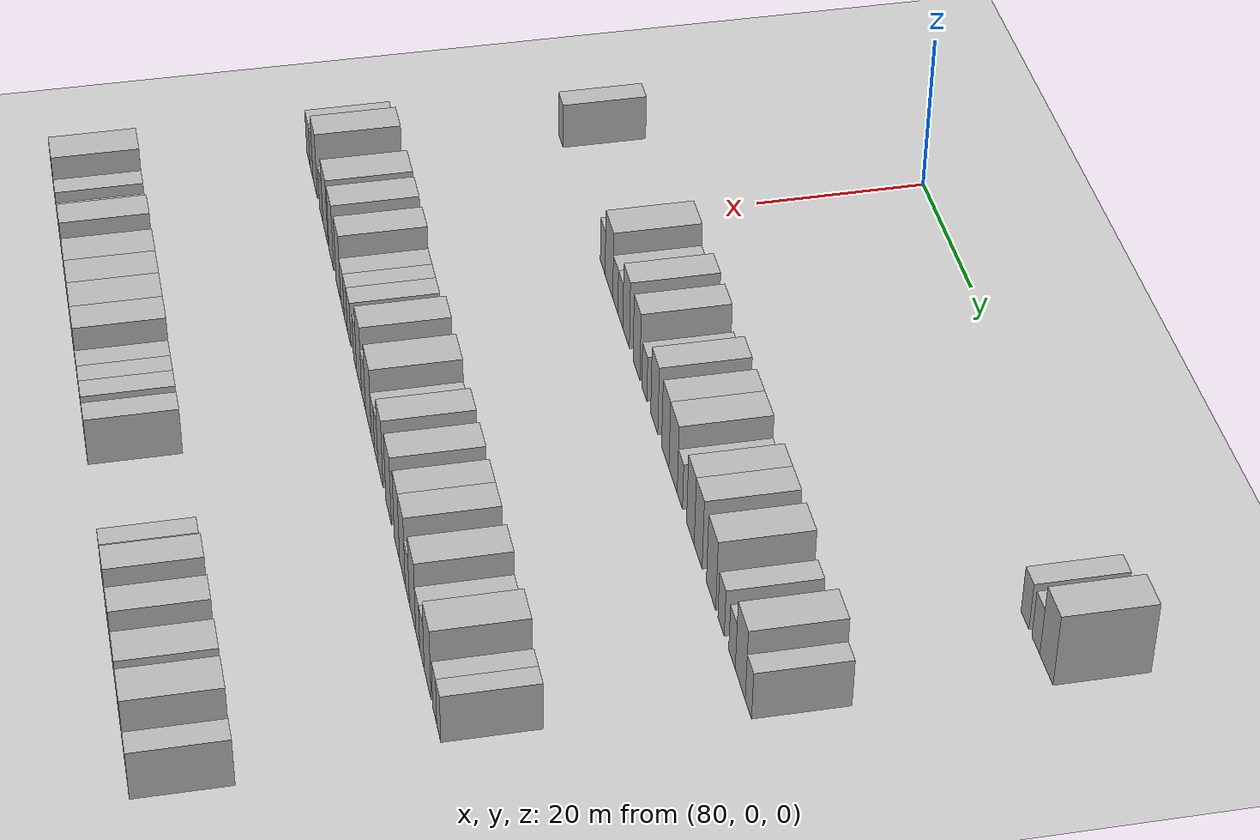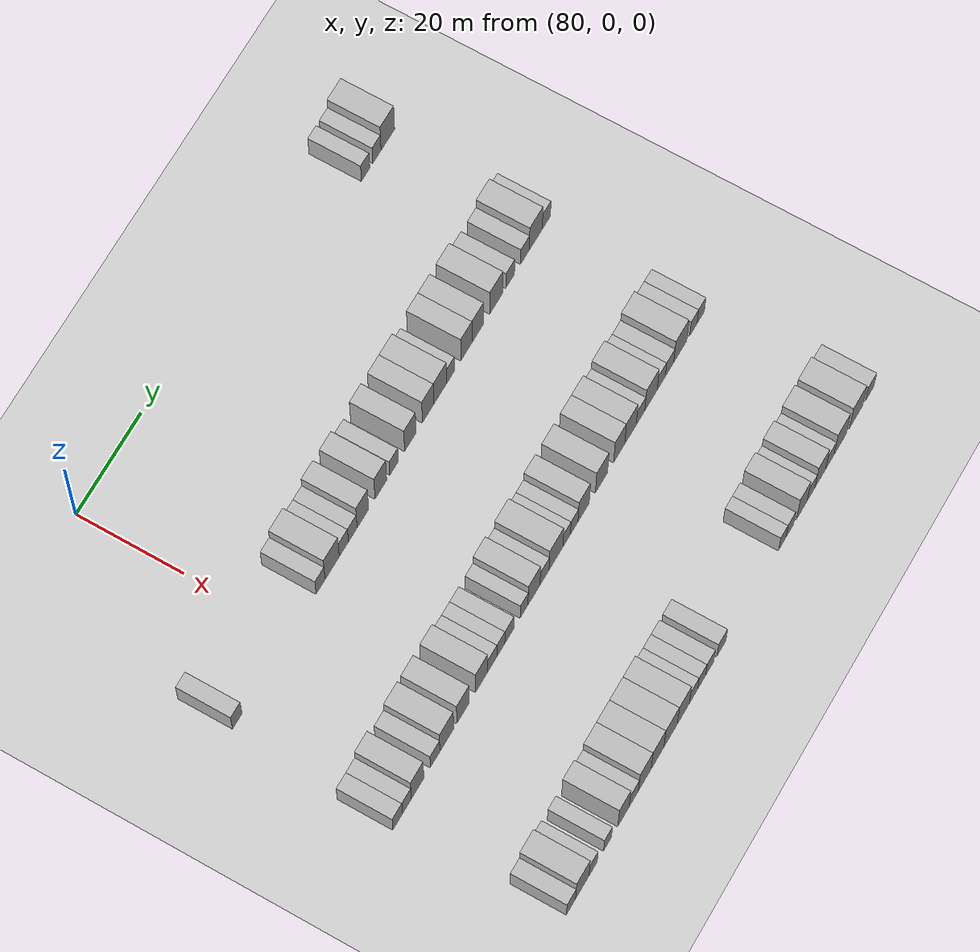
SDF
<sdf version="1.6">
 <world name="default">
  <include>
   <name>ground_plane_2</name>
   <uri>model://HANNAS_ground_plane</uri>
   <pose>100 0 0  0 0 0</pose>
  </include>
  <model name="building_604">
   <static>1</static>
   <pose>85.0000 74.1453 0 0.000000 0.000000 0.000000</pose>
   <link name="link">
    <pose>0 0 3.00 0 0 0</pose>
    <collision name="collision"><geometry><box><size>10.0000 2.7039 6.0000</size></box></geometry></collision>
    <visual name="visual">
     <cast_shadows>0</cast_shadows>
     <geometry><box><size>10.0000 2.7039 6.0000</size></box></geometry>
     <material>
      <script>
       <uri>model://HANNAS_wall/materials/scripts</uri>
       <uri>model://HANNAS_wall/materials/textures</uri>
       <name>vrc/HANNAS_wall</name>
      </script>
     </material>
    </visual>
   </link>
  </model>
  <model name="building_605">
   <static>1</static>
   <pose>85.0000 77.8396 0 0.000000 0.000000 0.000000</pose>
   <link name="link">
    <pose>0 0 3.00 0 0 0</pose>
    <collision name="collision"><geometry><box><size>10.0000 2.6846 6.0000</size></box></geometry></collision>
    <visual name="visual">
     <cast_shadows>0</cast_shadows>
     <geometry><box><size>10.0000 2.6846 6.0000</size></box></geometry>
     <material>
      <script>
       <uri>model://HANNAS_wall/materials/scripts</uri>
       <uri>model://HANNAS_wall/materials/textures</uri>
       <name>vrc/HANNAS_wall</name>
      </script>
     </material>
    </visual>
   </link>
  </model>
  <model name="building_606">
   <static>1</static>
   <pose>85.0000 81.4004 0 0.000000 0.000000 0.000000</pose>
   <link name="link">
    <pose>0 0 4.50 0 0 0</pose>
    <collision name="collision"><geometry><box><size>10.0000 4.4370 9.0000</size></box></geometry></collision>
    <visual name="visual">
     <cast_shadows>0</cast_shadows>
     <geometry><box><size>10.0000 4.4370 9.0000</size></box></geometry>
     <material>
      <script>
       <uri>model://HANNAS_wall/materials/scripts</uri>
       <uri>model://HANNAS_wall/materials/textures</uri>
       <name>vrc/HANNAS_wall</name>
      </script>
     </material>
    </visual>
   </link>
  </model>
  <model name="building_806">
   <static>1</static>
   <pose>115.0000 -16.8398 0 0.000000 0.000000 0.000000</pose>
   <link name="link">
    <pose>0 0 3.00 0 0 0</pose>
    <collision name="collision"><geometry><box><size>10.0000 2.8907 6.0000</size></box></geometry></collision>
    <visual name="visual">
     <cast_shadows>0</cast_shadows>
     <geometry><box><size>10.0000 2.8907 6.0000</size></box></geometry>
     <material>
      <script>
       <uri>model://HANNAS_wall/materials/scripts</uri>
       <uri>model://HANNAS_wall/materials/textures</uri>
       <name>vrc/HANNAS_wall</name>
      </script>
     </material>
    </visual>
   </link>
  </model>
  <model name="building_807">
   <static>1</static>
   <pose>115.0000 8.8310 0 0.000000 0.000000 0.000000</pose>
   <link name="link">
    <pose>0 0 3.00 0 0 0</pose>
    <collision name="collision"><geometry><box><size>10.0000 2.8169 6.0000</size></box></geometry></collision>
    <visual name="visual">
     <cast_shadows>0</cast_shadows>
     <geometry><box><size>10.0000 2.8169 6.0000</size></box></geometry>
     <material>
      <script>
       <uri>model://HANNAS_wall/materials/scripts</uri>
       <uri>model://HANNAS_wall/materials/textures</uri>
       <name>vrc/HANNAS_wall</name>
      </script>
     </material>
    </visual>
   </link>
  </model>
  <model name="building_808">
   <static>1</static>
   <pose>115.0000 12.4480 0 0.000000 0.000000 0.000000</pose>
   <link name="link">
    <pose>0 0 4.50 0 0 0</pose>
    <collision name="collision"><geometry><box><size>10.0000 4.4171 9.0000</size></box></geometry></collision>
    <visual name="visual">
     <cast_shadows>0</cast_shadows>
     <geometry><box><size>10.0000 4.4171 9.0000</size></box></geometry>
     <material>
      <script>
       <uri>model://HANNAS_wall/materials/scripts</uri>
       <uri>model://HANNAS_wall/materials/textures</uri>
       <name>vrc/HANNAS_wall</name>
      </script>
     </material>
    </visual>
   </link>
  </model>
  <model name="building_809">
   <static>1</static>
   <pose>115.0000 16.0940 0 0.000000 0.000000 0.000000</pose>
   <link name="link">
    <pose>0 0 3.00 0 0 0</pose>
    <collision name="collision"><geometry><box><size>10.0000 2.8749 6.0000</size></box></geometry></collision>
    <visual name="visual">
     <cast_shadows>0</cast_shadows>
     <geometry><box><size>10.0000 2.8749 6.0000</size></box></geometry>
     <material>
      <script>
       <uri>model://HANNAS_wall/materials/scripts</uri>
       <uri>model://HANNAS_wall/materials/textures</uri>
       <name>vrc/HANNAS_wall</name>
      </script>
     </material>
    </visual>
   </link>
  </model>
  <model name="building_810">
   <static>1</static>
   <pose>115.0000 18.9002 0 0.000000 0.000000 0.000000</pose>
   <link name="link">
    <pose>0 0 3.00 0 0 0</pose>
    <collision name="collision"><geometry><box><size>10.0000 2.7374 6.0000</size></box></geometry></collision>
    <visual name="visual">
     <cast_shadows>0</cast_shadows>
     <geometry><box><size>10.0000 2.7374 6.0000</size></box></geometry>
     <material>
      <script>
       <uri>model://HANNAS_wall/materials/scripts</uri>
       <uri>model://HANNAS_wall/materials/textures</uri>
       <name>vrc/HANNAS_wall</name>
      </script>
     </material>
    </visual>
   </link>
  </model>
  <model name="building_811">
   <static>1</static>
   <pose>115.0000 22.0830 0 0.000000 0.000000 0.000000</pose>
   <link name="link">
    <pose>0 0 4.50 0 0 0</pose>
    <collision name="collision"><geometry><box><size>10.0000 3.6283 9.0000</size></box></geometry></collision>
    <visual name="visual">
     <cast_shadows>0</cast_shadows>
     <geometry><box><size>10.0000 3.6283 9.0000</size></box></geometry>
     <material>
      <script>
       <uri>model://HANNAS_wall/materials/scripts</uri>
       <uri>model://HANNAS_wall/materials/textures</uri>
       <name>vrc/HANNAS_wall</name>
      </script>
     </material>
    </visual>
   </link>
  </model>
  <model name="building_812">
   <static>1</static>
   <pose>115.0000 27.7360 0 0.000000 0.000000 0.000000</pose>
   <link name="link">
    <pose>0 0 4.50 0 0 0</pose>
    <collision name="collision"><geometry><box><size>10.0000 3.6775 9.0000</size></box></geometry></collision>
    <visual name="visual">
     <cast_shadows>0</cast_shadows>
     <geometry><box><size>10.0000 3.6775 9.0000</size></box></geometry>
     <material>
      <script>
       <uri>model://HANNAS_wall/materials/scripts</uri>
       <uri>model://HANNAS_wall/materials/textures</uri>
       <name>vrc/HANNAS_wall</name>
      </script>
     </material>
    </visual>
   </link>
  </model>
  <model name="building_813">
   <static>1</static>
   <pose>115.0000 31.9320 0 0.000000 0.000000 0.000000</pose>
   <link name="link">
    <pose>0 0 3.00 0 0 0</pose>
    <collision name="collision"><geometry><box><size>10.0000 2.7144 6.0000</size></box></geometry></collision>
    <visual name="visual">
     <cast_shadows>0</cast_shadows>
     <geometry><box><size>10.0000 2.7144 6.0000</size></box></geometry>
     <material>
      <script>
       <uri>model://HANNAS_wall/materials/scripts</uri>
       <uri>model://HANNAS_wall/materials/textures</uri>
       <name>vrc/HANNAS_wall</name>
      </script>
     </material>
    </visual>
   </link>
  </model>
  <model name="building_814">
   <static>1</static>
   <pose>115.0000 37.1211 0 0.000000 0.000000 0.000000</pose>
   <link name="link">
    <pose>0 0 4.50 0 0 0</pose>
    <collision name="collision"><geometry><box><size>10.0000 3.6639 9.0000</size></box></geometry></collision>
    <visual name="visual">
     <cast_shadows>0</cast_shadows>
     <geometry><box><size>10.0000 3.6639 9.0000</size></box></geometry>
     <material>
      <script>
       <uri>model://HANNAS_wall/materials/scripts</uri>
       <uri>model://HANNAS_wall/materials/textures</uri>
       <name>vrc/HANNAS_wall</name>
      </script>
     </material>
    </visual>
   </link>
  </model>
  <model name="building_815">
   <static>1</static>
   <pose>115.0000 42.7922 0 0.000000 0.000000 0.000000</pose>
   <link name="link">
    <pose>0 0 4.50 0 0 0</pose>
    <collision name="collision"><geometry><box><size>10.0000 3.6782 9.0000</size></box></geometry></collision>
    <visual name="visual">
     <cast_shadows>0</cast_shadows>
     <geometry><box><size>10.0000 3.6782 9.0000</size></box></geometry>
     <material>
      <script>
       <uri>model://HANNAS_wall/materials/scripts</uri>
       <uri>model://HANNAS_wall/materials/textures</uri>
       <name>vrc/HANNAS_wall</name>
      </script>
     </material>
    </visual>
   </link>
  </model>
  <model name="building_816">
   <static>1</static>
   <pose>115.0000 46.7057 0 0.000000 0.000000 0.000000</pose>
   <link name="link">
    <pose>0 0 4.50 0 0 0</pose>
    <collision name="collision"><geometry><box><size>10.0000 4.1488 9.0000</size></box></geometry></collision>
    <visual name="visual">
     <cast_shadows>0</cast_shadows>
     <geometry><box><size>10.0000 4.1488 9.0000</size></box></geometry>
     <material>
      <script>
       <uri>model://HANNAS_wall/materials/scripts</uri>
       <uri>model://HANNAS_wall/materials/textures</uri>
       <name>vrc/HANNAS_wall</name>
      </script>
     </material>
    </visual>
   </link>
  </model>
  <model name="building_817">
   <static>1</static>
   <pose>115.0000 50.0648 0 0.000000 0.000000 0.000000</pose>
   <link name="link">
    <pose>0 0 3.00 0 0 0</pose>
    <collision name="collision"><geometry><box><size>10.0000 2.5695 6.0000</size></box></geometry></collision>
    <visual name="visual">
     <cast_shadows>0</cast_shadows>
     <geometry><box><size>10.0000 2.5695 6.0000</size></box></geometry>
     <material>
      <script>
       <uri>model://HANNAS_wall/materials/scripts</uri>
       <uri>model://HANNAS_wall/materials/textures</uri>
       <name>vrc/HANNAS_wall</name>
      </script>
     </material>
    </visual>
   </link>
  </model>
  <model name="building_818">
   <static>1</static>
   <pose>115.0000 55.1707 0 0.000000 0.000000 0.000000</pose>
   <link name="link">
    <pose>0 0 4.50 0 0 0</pose>
    <collision name="collision"><geometry><box><size>10.0000 3.6423 9.0000</size></box></geometry></collision>
    <visual name="visual">
     <cast_shadows>0</cast_shadows>
     <geometry><box><size>10.0000 3.6423 9.0000</size></box></geometry>
     <material>
      <script>
       <uri>model://HANNAS_wall/materials/scripts</uri>
       <uri>model://HANNAS_wall/materials/textures</uri>
       <name>vrc/HANNAS_wall</name>
      </script>
     </material>
    </visual>
   </link>
  </model>
  <model name="building_819">
   <static>1</static>
   <pose>115.0000 58.8680 0 0.000000 0.000000 0.000000</pose>
   <link name="link">
    <pose>0 0 4.50 0 0 0</pose>
    <collision name="collision"><geometry><box><size>10.0000 3.7523 9.0000</size></box></geometry></collision>
    <visual name="visual">
     <cast_shadows>0</cast_shadows>
     <geometry><box><size>10.0000 3.7523 9.0000</size></box></geometry>
     <material>
      <script>
       <uri>model://HANNAS_wall/materials/scripts</uri>
       <uri>model://HANNAS_wall/materials/textures</uri>
       <name>vrc/HANNAS_wall</name>
      </script>
     </material>
    </visual>
   </link>
  </model>
  <model name="building_820">
   <static>1</static>
   <pose>115.0000 64.8810 0 0.000000 0.000000 0.000000</pose>
   <link name="link">
    <pose>0 0 4.50 0 0 0</pose>
    <collision name="collision"><geometry><box><size>10.0000 4.2737 9.0000</size></box></geometry></collision>
    <visual name="visual">
     <cast_shadows>0</cast_shadows>
     <geometry><box><size>10.0000 4.2737 9.0000</size></box></geometry>
     <material>
      <script>
       <uri>model://HANNAS_wall/materials/scripts</uri>
       <uri>model://HANNAS_wall/materials/textures</uri>
       <name>vrc/HANNAS_wall</name>
      </script>
     </material>
    </visual>
   </link>
  </model>
  <model name="building_821">
   <static>1</static>
   <pose>115.0000 69.4474 0 0.000000 0.000000 0.000000</pose>
   <link name="link">
    <pose>0 0 3.00 0 0 0</pose>
    <collision name="collision"><geometry><box><size>10.0000 2.8591 6.0000</size></box></geometry></collision>
    <visual name="visual">
     <cast_shadows>0</cast_shadows>
     <geometry><box><size>10.0000 2.8591 6.0000</size></box></geometry>
     <material>
      <script>
       <uri>model://HANNAS_wall/materials/scripts</uri>
       <uri>model://HANNAS_wall/materials/textures</uri>
       <name>vrc/HANNAS_wall</name>
      </script>
     </material>
    </visual>
   </link>
  </model>
  <model name="building_822">
   <static>1</static>
   <pose>115.0000 74.3175 0 0.000000 0.000000 0.000000</pose>
   <link name="link">
    <pose>0 0 3.00 0 0 0</pose>
    <collision name="collision"><geometry><box><size>10.0000 2.8810 6.0000</size></box></geometry></collision>
    <visual name="visual">
     <cast_shadows>0</cast_shadows>
     <geometry><box><size>10.0000 2.8810 6.0000</size></box></geometry>
     <material>
      <script>
       <uri>model://HANNAS_wall/materials/scripts</uri>
       <uri>model://HANNAS_wall/materials/textures</uri>
       <name>vrc/HANNAS_wall</name>
      </script>
     </material>
    </visual>
   </link>
  </model>
  <model name="building_823">
   <static>1</static>
   <pose>115.0000 77.9196 0 0.000000 0.000000 0.000000</pose>
   <link name="link">
    <pose>0 0 4.50 0 0 0</pose>
    <collision name="collision"><geometry><box><size>10.0000 4.3233 9.0000</size></box></geometry></collision>
    <visual name="visual">
     <cast_shadows>0</cast_shadows>
     <geometry><box><size>10.0000 4.3233 9.0000</size></box></geometry>
     <material>
      <script>
       <uri>model://HANNAS_wall/materials/scripts</uri>
       <uri>model://HANNAS_wall/materials/textures</uri>
       <name>vrc/HANNAS_wall</name>
      </script>
     </material>
    </visual>
   </link>
  </model>
  <model name="building_824">
   <static>1</static>
   <pose>115.0000 81.4338 0 0.000000 0.000000 0.000000</pose>
   <link name="link">
    <pose>0 0 3.00 0 0 0</pose>
    <collision name="collision"><geometry><box><size>10.0000 2.7050 6.0000</size></box></geometry></collision>
    <visual name="visual">
     <cast_shadows>0</cast_shadows>
     <geometry><box><size>10.0000 2.7050 6.0000</size></box></geometry>
     <material>
      <script>
       <uri>model://HANNAS_wall/materials/scripts</uri>
       <uri>model://HANNAS_wall/materials/textures</uri>
       <name>vrc/HANNAS_wall</name>
      </script>
     </material>
    </visual>
   </link>
  </model>
  <model name="building_1018">
   <static>1</static>
   <pose>145.0000 -18.4782 0 0.000000 0.000000 0.000000</pose>
   <link name="link">
    <pose>0 0 3.00 0 0 0</pose>
    <collision name="collision"><geometry><box><size>10.0000 2.9635 6.0000</size></box></geometry></collision>
    <visual name="visual">
     <cast_shadows>0</cast_shadows>
     <geometry><box><size>10.0000 2.9635 6.0000</size></box></geometry>
     <material>
      <script>
       <uri>model://HANNAS_wall/materials/scripts</uri>
       <uri>model://HANNAS_wall/materials/textures</uri>
       <name>vrc/HANNAS_wall</name>
      </script>
     </material>
    </visual>
   </link>
  </model>
  <model name="building_1019">
   <static>1</static>
   <pose>145.0000 -15.6277 0 0.000000 0.000000 0.000000</pose>
   <link name="link">
    <pose>0 0 3.00 0 0 0</pose>
    <collision name="collision"><geometry><box><size>10.0000 2.7375 6.0000</size></box></geometry></collision>
    <visual name="visual">
     <cast_shadows>0</cast_shadows>
     <geometry><box><size>10.0000 2.7375 6.0000</size></box></geometry>
     <material>
      <script>
       <uri>model://HANNAS_wall/materials/scripts</uri>
       <uri>model://HANNAS_wall/materials/textures</uri>
       <name>vrc/HANNAS_wall</name>
      </script>
     </material>
    </visual>
   </link>
  </model>
  <model name="building_1020">
   <static>1</static>
   <pose>145.0000 -12.3094 0 0.000000 0.000000 0.000000</pose>
   <link name="link">
    <pose>0 0 4.50 0 0 0</pose>
    <collision name="collision"><geometry><box><size>10.0000 3.8991 9.0000</size></box></geometry></collision>
    <visual name="visual">
     <cast_shadows>0</cast_shadows>
     <geometry><box><size>10.0000 3.8991 9.0000</size></box></geometry>
     <material>
      <script>
       <uri>model://HANNAS_wall/materials/scripts</uri>
       <uri>model://HANNAS_wall/materials/textures</uri>
       <name>vrc/HANNAS_wall</name>
      </script>
     </material>
    </visual>
   </link>
  </model>
  <model name="building_1021">
   <static>1</static>
   <pose>145.0000 -6.8684 0 0.000000 0.000000 0.000000</pose>
   <link name="link">
    <pose>0 0 3.00 0 0 0</pose>
    <collision name="collision"><geometry><box><size>10.0000 2.9828 6.0000</size></box></geometry></collision>
    <visual name="visual">
     <cast_shadows>0</cast_shadows>
     <geometry><box><size>10.0000 2.9828 6.0000</size></box></geometry>
     <material>
      <script>
       <uri>model://HANNAS_wall/materials/scripts</uri>
       <uri>model://HANNAS_wall/materials/textures</uri>
       <name>vrc/HANNAS_wall</name>
      </script>
     </material>
    </visual>
   </link>
  </model>
  <model name="building_1022">
   <static>1</static>
   <pose>145.0000 -3.2334 0 0.000000 0.000000 0.000000</pose>
   <link name="link">
    <pose>0 0 4.50 0 0 0</pose>
    <collision name="collision"><geometry><box><size>10.0000 4.2872 9.0000</size></box></geometry></collision>
    <visual name="visual">
     <cast_shadows>0</cast_shadows>
     <geometry><box><size>10.0000 4.2872 9.0000</size></box></geometry>
     <material>
      <script>
       <uri>model://HANNAS_wall/materials/scripts</uri>
       <uri>model://HANNAS_wall/materials/textures</uri>
       <name>vrc/HANNAS_wall</name>
      </script>
     </material>
    </visual>
   </link>
  </model>
  <model name="building_1023">
   <static>1</static>
   <pose>145.0000 1.8615 0 0.000000 0.000000 0.000000</pose>
   <link name="link">
    <pose>0 0 4.50 0 0 0</pose>
    <collision name="collision"><geometry><box><size>10.0000 3.9025 9.0000</size></box></geometry></collision>
    <visual name="visual">
     <cast_shadows>0</cast_shadows>
     <geometry><box><size>10.0000 3.9025 9.0000</size></box></geometry>
     <material>
      <script>
       <uri>model://HANNAS_wall/materials/scripts</uri>
       <uri>model://HANNAS_wall/materials/textures</uri>
       <name>vrc/HANNAS_wall</name>
      </script>
     </material>
    </visual>
   </link>
  </model>
  <model name="building_1024">
   <static>1</static>
   <pose>145.0000 7.7265 0 0.000000 0.000000 0.000000</pose>
   <link name="link">
    <pose>0 0 4.50 0 0 0</pose>
    <collision name="collision"><geometry><box><size>10.0000 3.8275 9.0000</size></box></geometry></collision>
    <visual name="visual">
     <cast_shadows>0</cast_shadows>
     <geometry><box><size>10.0000 3.8275 9.0000</size></box></geometry>
     <material>
      <script>
       <uri>model://HANNAS_wall/materials/scripts</uri>
       <uri>model://HANNAS_wall/materials/textures</uri>
       <name>vrc/HANNAS_wall</name>
      </script>
     </material>
    </visual>
   </link>
  </model>
  <model name="building_1025">
   <static>1</static>
   <pose>145.0000 11.1079 0 0.000000 0.000000 0.000000</pose>
   <link name="link">
    <pose>0 0 3.00 0 0 0</pose>
    <collision name="collision"><geometry><box><size>10.0000 2.9354 6.0000</size></box></geometry></collision>
    <visual name="visual">
     <cast_shadows>0</cast_shadows>
     <geometry><box><size>10.0000 2.9354 6.0000</size></box></geometry>
     <material>
      <script>
       <uri>model://HANNAS_wall/materials/scripts</uri>
       <uri>model://HANNAS_wall/materials/textures</uri>
       <name>vrc/HANNAS_wall</name>
      </script>
     </material>
    </visual>
   </link>
  </model>
  <model name="building_1026">
   <static>1</static>
   <pose>145.0000 13.8409 0 0.000000 0.000000 0.000000</pose>
   <link name="link">
    <pose>0 0 3.00 0 0 0</pose>
    <collision name="collision"><geometry><box><size>10.0000 2.5305 6.0000</size></box></geometry></collision>
    <visual name="visual">
     <cast_shadows>0</cast_shadows>
     <geometry><box><size>10.0000 2.5305 6.0000</size></box></geometry>
     <material>
      <script>
       <uri>model://HANNAS_wall/materials/scripts</uri>
       <uri>model://HANNAS_wall/materials/textures</uri>
       <name>vrc/HANNAS_wall</name>
      </script>
     </material>
    </visual>
   </link>
  </model>
  <model name="building_1027">
   <static>1</static>
   <pose>145.0000 16.5468 0 0.000000 0.000000 0.000000</pose>
   <link name="link">
    <pose>0 0 3.00 0 0 0</pose>
    <collision name="collision"><geometry><box><size>10.0000 2.8813 6.0000</size></box></geometry></collision>
    <visual name="visual">
     <cast_shadows>0</cast_shadows>
     <geometry><box><size>10.0000 2.8813 6.0000</size></box></geometry>
     <material>
      <script>
       <uri>model://HANNAS_wall/materials/scripts</uri>
       <uri>model://HANNAS_wall/materials/textures</uri>
       <name>vrc/HANNAS_wall</name>
      </script>
     </material>
    </visual>
   </link>
  </model>
  <model name="building_1028">
   <static>1</static>
   <pose>145.0000 21.2344 0 0.000000 0.000000 0.000000</pose>
   <link name="link">
    <pose>0 0 3.00 0 0 0</pose>
    <collision name="collision"><geometry><box><size>10.0000 2.4938 6.0000</size></box></geometry></collision>
    <visual name="visual">
     <cast_shadows>0</cast_shadows>
     <geometry><box><size>10.0000 2.4938 6.0000</size></box></geometry>
     <material>
      <script>
       <uri>model://HANNAS_wall/materials/scripts</uri>
       <uri>model://HANNAS_wall/materials/textures</uri>
       <name>vrc/HANNAS_wall</name>
      </script>
     </material>
    </visual>
   </link>
  </model>
  <model name="building_1029">
   <static>1</static>
   <pose>145.0000 24.4178 0 0.000000 0.000000 0.000000</pose>
   <link name="link">
    <pose>0 0 4.50 0 0 0</pose>
    <collision name="collision"><geometry><box><size>10.0000 3.8731 9.0000</size></box></geometry></collision>
    <visual name="visual">
     <cast_shadows>0</cast_shadows>
     <geometry><box><size>10.0000 3.8731 9.0000</size></box></geometry>
     <material>
      <script>
       <uri>model://HANNAS_wall/materials/scripts</uri>
       <uri>model://HANNAS_wall/materials/textures</uri>
       <name>vrc/HANNAS_wall</name>
      </script>
     </material>
    </visual>
   </link>
  </model>
  <model name="building_1030">
   <static>1</static>
   <pose>145.0000 27.8077 0 0.000000 0.000000 0.000000</pose>
   <link name="link">
    <pose>0 0 3.00 0 0 0</pose>
    <collision name="collision"><geometry><box><size>10.0000 2.9067 6.0000</size></box></geometry></collision>
    <visual name="visual">
     <cast_shadows>0</cast_shadows>
     <geometry><box><size>10.0000 2.9067 6.0000</size></box></geometry>
     <material>
      <script>
       <uri>model://HANNAS_wall/materials/scripts</uri>
       <uri>model://HANNAS_wall/materials/textures</uri>
       <name>vrc/HANNAS_wall</name>
      </script>
     </material>
    </visual>
   </link>
  </model>
  <model name="building_1031">
   <static>1</static>
   <pose>145.0000 31.4866 0 0.000000 0.000000 0.000000</pose>
   <link name="link">
    <pose>0 0 4.50 0 0 0</pose>
    <collision name="collision"><geometry><box><size>10.0000 4.4511 9.0000</size></box></geometry></collision>
    <visual name="visual">
     <cast_shadows>0</cast_shadows>
     <geometry><box><size>10.0000 4.4511 9.0000</size></box></geometry>
     <material>
      <script>
       <uri>model://HANNAS_wall/materials/scripts</uri>
       <uri>model://HANNAS_wall/materials/textures</uri>
       <name>vrc/HANNAS_wall</name>
      </script>
     </material>
    </visual>
   </link>
  </model>
  <model name="building_1032">
   <static>1</static>
   <pose>145.0000 34.9445 0 0.000000 0.000000 0.000000</pose>
   <link name="link">
    <pose>0 0 3.00 0 0 0</pose>
    <collision name="collision"><geometry><box><size>10.0000 2.4646 6.0000</size></box></geometry></collision>
    <visual name="visual">
     <cast_shadows>0</cast_shadows>
     <geometry><box><size>10.0000 2.4646 6.0000</size></box></geometry>
     <material>
      <script>
       <uri>model://HANNAS_wall/materials/scripts</uri>
       <uri>model://HANNAS_wall/materials/textures</uri>
       <name>vrc/HANNAS_wall</name>
      </script>
     </material>
    </visual>
   </link>
  </model>
  <model name="building_1033">
   <static>1</static>
   <pose>145.0000 37.3908 0 0.000000 0.000000 0.000000</pose>
   <link name="link">
    <pose>0 0 3.00 0 0 0</pose>
    <collision name="collision"><geometry><box><size>10.0000 2.4281 6.0000</size></box></geometry></collision>
    <visual name="visual">
     <cast_shadows>0</cast_shadows>
     <geometry><box><size>10.0000 2.4281 6.0000</size></box></geometry>
     <material>
      <script>
       <uri>model://HANNAS_wall/materials/scripts</uri>
       <uri>model://HANNAS_wall/materials/textures</uri>
       <name>vrc/HANNAS_wall</name>
      </script>
     </material>
    </visual>
   </link>
  </model>
  <model name="building_1034">
   <static>1</static>
   <pose>145.0000 40.4427 0 0.000000 0.000000 0.000000</pose>
   <link name="link">
    <pose>0 0 4.50 0 0 0</pose>
    <collision name="collision"><geometry><box><size>10.0000 3.6757 9.0000</size></box></geometry></collision>
    <visual name="visual">
     <cast_shadows>0</cast_shadows>
     <geometry><box><size>10.0000 3.6757 9.0000</size></box></geometry>
     <material>
      <script>
       <uri>model://HANNAS_wall/materials/scripts</uri>
       <uri>model://HANNAS_wall/materials/textures</uri>
       <name>vrc/HANNAS_wall</name>
      </script>
     </material>
    </visual>
   </link>
  </model>
  <model name="building_1035">
   <static>1</static>
   <pose>145.0000 46.2655 0 0.000000 0.000000 0.000000</pose>
   <link name="link">
    <pose>0 0 4.50 0 0 0</pose>
    <collision name="collision"><geometry><box><size>10.0000 3.9698 9.0000</size></box></geometry></collision>
    <visual name="visual">
     <cast_shadows>0</cast_shadows>
     <geometry><box><size>10.0000 3.9698 9.0000</size></box></geometry>
     <material>
      <script>
       <uri>model://HANNAS_wall/materials/scripts</uri>
       <uri>model://HANNAS_wall/materials/textures</uri>
       <name>vrc/HANNAS_wall</name>
      </script>
     </material>
    </visual>
   </link>
  </model>
  <model name="building_1036">
   <static>1</static>
   <pose>145.0000 52.0852 0 0.000000 0.000000 0.000000</pose>
   <link name="link">
    <pose>0 0 4.50 0 0 0</pose>
    <collision name="collision"><geometry><box><size>10.0000 3.6696 9.0000</size></box></geometry></collision>
    <visual name="visual">
     <cast_shadows>0</cast_shadows>
     <geometry><box><size>10.0000 3.6696 9.0000</size></box></geometry>
     <material>
      <script>
       <uri>model://HANNAS_wall/materials/scripts</uri>
       <uri>model://HANNAS_wall/materials/textures</uri>
       <name>vrc/HANNAS_wall</name>
      </script>
     </material>
    </visual>
   </link>
  </model>
  <model name="building_1037">
   <static>1</static>
   <pose>145.0000 55.8168 0 0.000000 0.000000 0.000000</pose>
   <link name="link">
    <pose>0 0 4.50 0 0 0</pose>
    <collision name="collision"><geometry><box><size>10.0000 3.7935 9.0000</size></box></geometry></collision>
    <visual name="visual">
     <cast_shadows>0</cast_shadows>
     <geometry><box><size>10.0000 3.7935 9.0000</size></box></geometry>
     <material>
      <script>
       <uri>model://HANNAS_wall/materials/scripts</uri>
       <uri>model://HANNAS_wall/materials/textures</uri>
       <name>vrc/HANNAS_wall</name>
      </script>
     </material>
    </visual>
   </link>
  </model>
  <model name="building_1038">
   <static>1</static>
   <pose>145.0000 59.1231 0 0.000000 0.000000 0.000000</pose>
   <link name="link">
    <pose>0 0 3.00 0 0 0</pose>
    <collision name="collision"><geometry><box><size>10.0000 2.8191 6.0000</size></box></geometry></collision>
    <visual name="visual">
     <cast_shadows>0</cast_shadows>
     <geometry><box><size>10.0000 2.8191 6.0000</size></box></geometry>
     <material>
      <script>
       <uri>model://HANNAS_wall/materials/scripts</uri>
       <uri>model://HANNAS_wall/materials/textures</uri>
       <name>vrc/HANNAS_wall</name>
      </script>
     </material>
    </visual>
   </link>
  </model>
  <model name="building_1039">
   <static>1</static>
   <pose>145.0000 62.5954 0 0.000000 0.000000 0.000000</pose>
   <link name="link">
    <pose>0 0 4.50 0 0 0</pose>
    <collision name="collision"><geometry><box><size>10.0000 4.1255 9.0000</size></box></geometry></collision>
    <visual name="visual">
     <cast_shadows>0</cast_shadows>
     <geometry><box><size>10.0000 4.1255 9.0000</size></box></geometry>
     <material>
      <script>
       <uri>model://HANNAS_wall/materials/scripts</uri>
       <uri>model://HANNAS_wall/materials/textures</uri>
       <name>vrc/HANNAS_wall</name>
      </script>
     </material>
    </visual>
   </link>
  </model>
  <model name="building_1040">
   <static>1</static>
   <pose>145.0000 66.0098 0 0.000000 0.000000 0.000000</pose>
   <link name="link">
    <pose>0 0 3.00 0 0 0</pose>
    <collision name="collision"><geometry><box><size>10.0000 2.7034 6.0000</size></box></geometry></collision>
    <visual name="visual">
     <cast_shadows>0</cast_shadows>
     <geometry><box><size>10.0000 2.7034 6.0000</size></box></geometry>
     <material>
      <script>
       <uri>model://HANNAS_wall/materials/scripts</uri>
       <uri>model://HANNAS_wall/materials/textures</uri>
       <name>vrc/HANNAS_wall</name>
      </script>
     </material>
    </visual>
   </link>
  </model>
  <model name="building_1041">
   <static>1</static>
   <pose>145.0000 68.7518 0 0.000000 0.000000 0.000000</pose>
   <link name="link">
    <pose>0 0 3.00 0 0 0</pose>
    <collision name="collision"><geometry><box><size>10.0000 2.7805 6.0000</size></box></geometry></collision>
    <visual name="visual">
     <cast_shadows>0</cast_shadows>
     <geometry><box><size>10.0000 2.7805 6.0000</size></box></geometry>
     <material>
      <script>
       <uri>model://HANNAS_wall/materials/scripts</uri>
       <uri>model://HANNAS_wall/materials/textures</uri>
       <name>vrc/HANNAS_wall</name>
      </script>
     </material>
    </visual>
   </link>
  </model>
  <model name="building_1042">
   <static>1</static>
   <pose>145.0000 72.3159 0 0.000000 0.000000 0.000000</pose>
   <link name="link">
    <pose>0 0 4.50 0 0 0</pose>
    <collision name="collision"><geometry><box><size>10.0000 4.3478 9.0000</size></box></geometry></collision>
    <visual name="visual">
     <cast_shadows>0</cast_shadows>
     <geometry><box><size>10.0000 4.3478 9.0000</size></box></geometry>
     <material>
      <script>
       <uri>model://HANNAS_wall/materials/scripts</uri>
       <uri>model://HANNAS_wall/materials/textures</uri>
       <name>vrc/HANNAS_wall</name>
      </script>
     </material>
    </visual>
   </link>
  </model>
  <model name="building_1043">
   <static>1</static>
   <pose>145.0000 76.7287 0 0.000000 0.000000 0.000000</pose>
   <link name="link">
    <pose>0 0 3.00 0 0 0</pose>
    <collision name="collision"><geometry><box><size>10.0000 2.4777 6.0000</size></box></geometry></collision>
    <visual name="visual">
     <cast_shadows>0</cast_shadows>
     <geometry><box><size>10.0000 2.4777 6.0000</size></box></geometry>
     <material>
      <script>
       <uri>model://HANNAS_wall/materials/scripts</uri>
       <uri>model://HANNAS_wall/materials/textures</uri>
       <name>vrc/HANNAS_wall</name>
      </script>
     </material>
    </visual>
   </link>
  </model>
  <model name="building_1044">
   <static>1</static>
   <pose>145.0000 79.2024 0 0.000000 0.000000 0.000000</pose>
   <link name="link">
    <pose>0 0 3.00 0 0 0</pose>
    <collision name="collision"><geometry><box><size>10.0000 2.4698 6.0000</size></box></geometry></collision>
    <visual name="visual">
     <cast_shadows>0</cast_shadows>
     <geometry><box><size>10.0000 2.4698 6.0000</size></box></geometry>
     <material>
      <script>
       <uri>model://HANNAS_wall/materials/scripts</uri>
       <uri>model://HANNAS_wall/materials/textures</uri>
       <name>vrc/HANNAS_wall</name>
      </script>
     </material>
    </visual>
   </link>
  </model>
  <model name="building_1254">
   <static>1</static>
   <pose>175.0000 -16.9239 0 0.000000 0.000000 0.000000</pose>
   <link name="link">
    <pose>0 0 3.00 0 0 0</pose>
    <collision name="collision"><geometry><box><size>10.0000 2.8763 6.0000</size></box></geometry></collision>
    <visual name="visual">
     <cast_shadows>0</cast_shadows>
     <geometry><box><size>10.0000 2.8763 6.0000</size></box></geometry>
     <material>
      <script>
       <uri>model://HANNAS_wall/materials/scripts</uri>
       <uri>model://HANNAS_wall/materials/textures</uri>
       <name>vrc/HANNAS_wall</name>
      </script>
     </material>
    </visual>
   </link>
  </model>
  <model name="building_1255">
   <static>1</static>
   <pose>175.0000 -13.3655 0 0.000000 0.000000 0.000000</pose>
   <link name="link">
    <pose>0 0 4.50 0 0 0</pose>
    <collision name="collision"><geometry><box><size>10.0000 4.2404 9.0000</size></box></geometry></collision>
    <visual name="visual">
     <cast_shadows>0</cast_shadows>
     <geometry><box><size>10.0000 4.2404 9.0000</size></box></geometry>
     <material>
      <script>
       <uri>model://HANNAS_wall/materials/scripts</uri>
       <uri>model://HANNAS_wall/materials/textures</uri>
       <name>vrc/HANNAS_wall</name>
      </script>
     </material>
    </visual>
   </link>
  </model>
  <model name="building_1256">
   <static>1</static>
   <pose>175.0000 -9.9422 0 0.000000 0.000000 0.000000</pose>
   <link name="link">
    <pose>0 0 3.00 0 0 0</pose>
    <collision name="collision"><geometry><box><size>10.0000 2.6064 6.0000</size></box></geometry></collision>
    <visual name="visual">
     <cast_shadows>0</cast_shadows>
     <geometry><box><size>10.0000 2.6064 6.0000</size></box></geometry>
     <material>
      <script>
       <uri>model://HANNAS_wall/materials/scripts</uri>
       <uri>model://HANNAS_wall/materials/textures</uri>
       <name>vrc/HANNAS_wall</name>
      </script>
     </material>
    </visual>
   </link>
  </model>
  <model name="building_1257">
   <static>1</static>
   <pose>175.0000 -5.3810 0 0.000000 0.000000 0.000000</pose>
   <link name="link">
    <pose>0 0 3.00 0 0 0</pose>
    <collision name="collision"><geometry><box><size>10.0000 2.5160 6.0000</size></box></geometry></collision>
    <visual name="visual">
     <cast_shadows>0</cast_shadows>
     <geometry><box><size>10.0000 2.5160 6.0000</size></box></geometry>
     <material>
      <script>
       <uri>model://HANNAS_wall/materials/scripts</uri>
       <uri>model://HANNAS_wall/materials/textures</uri>
       <name>vrc/HANNAS_wall</name>
      </script>
     </material>
    </visual>
   </link>
  </model>
  <model name="building_1258">
   <static>1</static>
   <pose>175.0000 -0.3116 0 0.000000 0.000000 0.000000</pose>
   <link name="link">
    <pose>0 0 4.50 0 0 0</pose>
    <collision name="collision"><geometry><box><size>10.0000 3.6228 9.0000</size></box></geometry></collision>
    <visual name="visual">
     <cast_shadows>0</cast_shadows>
     <geometry><box><size>10.0000 3.6228 9.0000</size></box></geometry>
     <material>
      <script>
       <uri>model://HANNAS_wall/materials/scripts</uri>
       <uri>model://HANNAS_wall/materials/textures</uri>
       <name>vrc/HANNAS_wall</name>
      </script>
     </material>
    </visual>
   </link>
  </model>
  <model name="building_1259">
   <static>1</static>
   <pose>175.0000 2.9721 0 0.000000 0.000000 0.000000</pose>
   <link name="link">
    <pose>0 0 3.00 0 0 0</pose>
    <collision name="collision"><geometry><box><size>10.0000 2.9445 6.0000</size></box></geometry></collision>
    <visual name="visual">
     <cast_shadows>0</cast_shadows>
     <geometry><box><size>10.0000 2.9445 6.0000</size></box></geometry>
     <material>
      <script>
       <uri>model://HANNAS_wall/materials/scripts</uri>
       <uri>model://HANNAS_wall/materials/textures</uri>
       <name>vrc/HANNAS_wall</name>
      </script>
     </material>
    </visual>
   </link>
  </model>
  <model name="building_1260">
   <static>1</static>
   <pose>175.0000 6.4851 0 0.000000 0.000000 0.000000</pose>
   <link name="link">
    <pose>0 0 4.50 0 0 0</pose>
    <collision name="collision"><geometry><box><size>10.0000 4.0816 9.0000</size></box></geometry></collision>
    <visual name="visual">
     <cast_shadows>0</cast_shadows>
     <geometry><box><size>10.0000 4.0816 9.0000</size></box></geometry>
     <material>
      <script>
       <uri>model://HANNAS_wall/materials/scripts</uri>
       <uri>model://HANNAS_wall/materials/textures</uri>
       <name>vrc/HANNAS_wall</name>
      </script>
     </material>
    </visual>
   </link>
  </model>
  <model name="building_1261">
   <static>1</static>
   <pose>175.0000 10.5788 0 0.000000 0.000000 0.000000</pose>
   <link name="link">
    <pose>0 0 4.50 0 0 0</pose>
    <collision name="collision"><geometry><box><size>10.0000 4.1058 9.0000</size></box></geometry></collision>
    <visual name="visual">
     <cast_shadows>0</cast_shadows>
     <geometry><box><size>10.0000 4.1058 9.0000</size></box></geometry>
     <material>
      <script>
       <uri>model://HANNAS_wall/materials/scripts</uri>
       <uri>model://HANNAS_wall/materials/textures</uri>
       <name>vrc/HANNAS_wall</name>
      </script>
     </material>
    </visual>
   </link>
  </model>
  <model name="building_1262">
   <static>1</static>
   <pose>175.0000 14.7907 0 0.000000 0.000000 0.000000</pose>
   <link name="link">
    <pose>0 0 4.50 0 0 0</pose>
    <collision name="collision"><geometry><box><size>10.0000 4.3181 9.0000</size></box></geometry></collision>
    <visual name="visual">
     <cast_shadows>0</cast_shadows>
     <geometry><box><size>10.0000 4.3181 9.0000</size></box></geometry>
     <material>
      <script>
       <uri>model://HANNAS_wall/materials/scripts</uri>
       <uri>model://HANNAS_wall/materials/textures</uri>
       <name>vrc/HANNAS_wall</name>
      </script>
     </material>
    </visual>
   </link>
  </model>
  <model name="building_1263">
   <static>1</static>
   <pose>175.0000 18.9041 0 0.000000 0.000000 0.000000</pose>
   <link name="link">
    <pose>0 0 4.50 0 0 0</pose>
    <collision name="collision"><geometry><box><size>10.0000 3.9087 9.0000</size></box></geometry></collision>
    <visual name="visual">
     <cast_shadows>0</cast_shadows>
     <geometry><box><size>10.0000 3.9087 9.0000</size></box></geometry>
     <material>
      <script>
       <uri>model://HANNAS_wall/materials/scripts</uri>
       <uri>model://HANNAS_wall/materials/textures</uri>
       <name>vrc/HANNAS_wall</name>
      </script>
     </material>
    </visual>
   </link>
  </model>
  <model name="building_1264">
   <static>1</static>
   <pose>175.0000 22.2008 0 0.000000 0.000000 0.000000</pose>
   <link name="link">
    <pose>0 0 3.00 0 0 0</pose>
    <collision name="collision"><geometry><box><size>10.0000 2.6848 6.0000</size></box></geometry></collision>
    <visual name="visual">
     <cast_shadows>0</cast_shadows>
     <geometry><box><size>10.0000 2.6848 6.0000</size></box></geometry>
     <material>
      <script>
       <uri>model://HANNAS_wall/materials/scripts</uri>
       <uri>model://HANNAS_wall/materials/textures</uri>
       <name>vrc/HANNAS_wall</name>
      </script>
     </material>
    </visual>
   </link>
  </model>
  <model name="building_1265">
   <static>1</static>
   <pose>175.0000 24.8284 0 0.000000 0.000000 0.000000</pose>
   <link name="link">
    <pose>0 0 3.00 0 0 0</pose>
    <collision name="collision"><geometry><box><size>10.0000 2.5704 6.0000</size></box></geometry></collision>
    <visual name="visual">
     <cast_shadows>0</cast_shadows>
     <geometry><box><size>10.0000 2.5704 6.0000</size></box></geometry>
     <material>
      <script>
       <uri>model://HANNAS_wall/materials/scripts</uri>
       <uri>model://HANNAS_wall/materials/textures</uri>
       <name>vrc/HANNAS_wall</name>
      </script>
     </material>
    </visual>
   </link>
  </model>
  <model name="building_1266">
   <static>1</static>
   <pose>175.0000 27.4816 0 0.000000 0.000000 0.000000</pose>
   <link name="link">
    <pose>0 0 3.00 0 0 0</pose>
    <collision name="collision"><geometry><box><size>10.0000 2.7359 6.0000</size></box></geometry></collision>
    <visual name="visual">
     <cast_shadows>0</cast_shadows>
     <geometry><box><size>10.0000 2.7359 6.0000</size></box></geometry>
     <material>
      <script>
       <uri>model://HANNAS_wall/materials/scripts</uri>
       <uri>model://HANNAS_wall/materials/textures</uri>
       <name>vrc/HANNAS_wall</name>
      </script>
     </material>
    </visual>
   </link>
  </model>
  <model name="building_1267">
   <static>1</static>
   <pose>175.0000 31.3249 0 0.000000 0.000000 0.000000</pose>
   <link name="link">
    <pose>0 0 3.00 0 0 0</pose>
    <collision name="collision"><geometry><box><size>10.0000 2.9507 6.0000</size></box></geometry></collision>
    <visual name="visual">
     <cast_shadows>0</cast_shadows>
     <geometry><box><size>10.0000 2.9507 6.0000</size></box></geometry>
     <material>
      <script>
       <uri>model://HANNAS_wall/materials/scripts</uri>
       <uri>model://HANNAS_wall/materials/textures</uri>
       <name>vrc/HANNAS_wall</name>
      </script>
     </material>
    </visual>
   </link>
  </model>
  <model name="building_1268">
   <static>1</static>
   <pose>175.0000 51.4626 0 0.000000 0.000000 0.000000</pose>
   <link name="link">
    <pose>0 0 3.00 0 0 0</pose>
    <collision name="collision"><geometry><box><size>10.0000 2.4416 6.0000</size></box></geometry></collision>
    <visual name="visual">
     <cast_shadows>0</cast_shadows>
     <geometry><box><size>10.0000 2.4416 6.0000</size></box></geometry>
     <material>
      <script>
       <uri>model://HANNAS_wall/materials/scripts</uri>
       <uri>model://HANNAS_wall/materials/textures</uri>
       <name>vrc/HANNAS_wall</name>
      </script>
     </material>
    </visual>
   </link>
  </model>
  <model name="building_1269">
   <static>1</static>
   <pose>175.0000 53.9772 0 0.000000 0.000000 0.000000</pose>
   <link name="link">
    <pose>0 0 3.00 0 0 0</pose>
    <collision name="collision"><geometry><box><size>10.0000 2.5877 6.0000</size></box></geometry></collision>
    <visual name="visual">
     <cast_shadows>0</cast_shadows>
     <geometry><box><size>10.0000 2.5877 6.0000</size></box></geometry>
     <material>
      <script>
       <uri>model://HANNAS_wall/materials/scripts</uri>
       <uri>model://HANNAS_wall/materials/textures</uri>
       <name>vrc/HANNAS_wall</name>
      </script>
     </material>
    </visual>
   </link>
  </model>
  <model name="building_1270">
   <static>1</static>
   <pose>175.0000 58.0722 0 0.000000 0.000000 0.000000</pose>
   <link name="link">
    <pose>0 0 4.50 0 0 0</pose>
    <collision name="collision"><geometry><box><size>10.0000 3.6023 9.0000</size></box></geometry></collision>
    <visual name="visual">
     <cast_shadows>0</cast_shadows>
     <geometry><box><size>10.0000 3.6023 9.0000</size></box></geometry>
     <material>
      <script>
       <uri>model://HANNAS_wall/materials/scripts</uri>
       <uri>model://HANNAS_wall/materials/textures</uri>
       <name>vrc/HANNAS_wall</name>
      </script>
     </material>
    </visual>
   </link>
  </model>
  <model name="building_1271">
   <static>1</static>
   <pose>175.0000 61.1802 0 0.000000 0.000000 0.000000</pose>
   <link name="link">
    <pose>0 0 3.00 0 0 0</pose>
    <collision name="collision"><geometry><box><size>10.0000 2.6136 6.0000</size></box></geometry></collision>
    <visual name="visual">
     <cast_shadows>0</cast_shadows>
     <geometry><box><size>10.0000 2.6136 6.0000</size></box></geometry>
     <material>
      <script>
       <uri>model://HANNAS_wall/materials/scripts</uri>
       <uri>model://HANNAS_wall/materials/textures</uri>
       <name>vrc/HANNAS_wall</name>
      </script>
     </material>
    </visual>
   </link>
  </model>
  <model name="building_1272">
   <static>1</static>
   <pose>175.0000 64.2888 0 0.000000 0.000000 0.000000</pose>
   <link name="link">
    <pose>0 0 4.50 0 0 0</pose>
    <collision name="collision"><geometry><box><size>10.0000 3.6038 9.0000</size></box></geometry></collision>
    <visual name="visual">
     <cast_shadows>0</cast_shadows>
     <geometry><box><size>10.0000 3.6038 9.0000</size></box></geometry>
     <material>
      <script>
       <uri>model://HANNAS_wall/materials/scripts</uri>
       <uri>model://HANNAS_wall/materials/textures</uri>
       <name>vrc/HANNAS_wall</name>
      </script>
     </material>
    </visual>
   </link>
  </model>
  <model name="building_1273">
   <static>1</static>
   <pose>175.0000 67.4967 0 0.000000 0.000000 0.000000</pose>
   <link name="link">
    <pose>0 0 3.00 0 0 0</pose>
    <collision name="collision"><geometry><box><size>10.0000 2.8120 6.0000</size></box></geometry></collision>
    <visual name="visual">
     <cast_shadows>0</cast_shadows>
     <geometry><box><size>10.0000 2.8120 6.0000</size></box></geometry>
     <material>
      <script>
       <uri>model://HANNAS_wall/materials/scripts</uri>
       <uri>model://HANNAS_wall/materials/textures</uri>
       <name>vrc/HANNAS_wall</name>
      </script>
     </material>
    </visual>
   </link>
  </model>
  <model name="building_1274">
   <static>1</static>
   <pose>175.0000 71.0115 0 0.000000 0.000000 0.000000</pose>
   <link name="link">
    <pose>0 0 4.50 0 0 0</pose>
    <collision name="collision"><geometry><box><size>10.0000 4.2176 9.0000</size></box></geometry></collision>
    <visual name="visual">
     <cast_shadows>0</cast_shadows>
     <geometry><box><size>10.0000 4.2176 9.0000</size></box></geometry>
     <material>
      <script>
       <uri>model://HANNAS_wall/materials/scripts</uri>
       <uri>model://HANNAS_wall/materials/textures</uri>
       <name>vrc/HANNAS_wall</name>
      </script>
     </material>
    </visual>
   </link>
  </model>
  <model name="building_1275">
   <static>1</static>
   <pose>175.0000 76.3697 0 0.000000 0.000000 0.000000</pose>
   <link name="link">
    <pose>0 0 4.50 0 0 0</pose>
    <collision name="collision"><geometry><box><size>10.0000 4.4987 9.0000</size></box></geometry></collision>
    <visual name="visual">
     <cast_shadows>0</cast_shadows>
     <geometry><box><size>10.0000 4.4987 9.0000</size></box></geometry>
     <material>
      <script>
       <uri>model://HANNAS_wall/materials/scripts</uri>
       <uri>model://HANNAS_wall/materials/textures</uri>
       <name>vrc/HANNAS_wall</name>
      </script>
     </material>
    </visual>
   </link>
  </model>
  <model name="building_1276">
   <static>1</static>
   <pose>175.0000 81.0756 0 0.000000 0.000000 0.000000</pose>
   <link name="link">
    <pose>0 0 3.00 0 0 0</pose>
    <collision name="collision"><geometry><box><size>10.0000 2.9131 6.0000</size></box></geometry></collision>
    <visual name="visual">
     <cast_shadows>0</cast_shadows>
     <geometry><box><size>10.0000 2.9131 6.0000</size></box></geometry>
     <material>
      <script>
       <uri>model://HANNAS_wall/materials/scripts</uri>
       <uri>model://HANNAS_wall/materials/textures</uri>
       <name>vrc/HANNAS_wall</name>
      </script>
     </material>
    </visual>
   </link>
  </model>
 </world>
</sdf>
